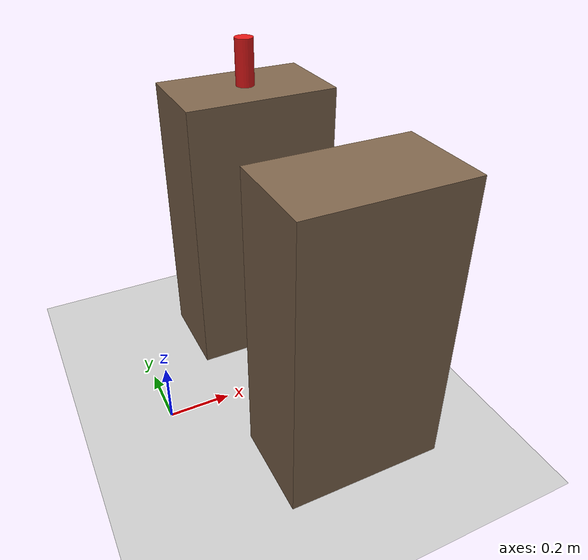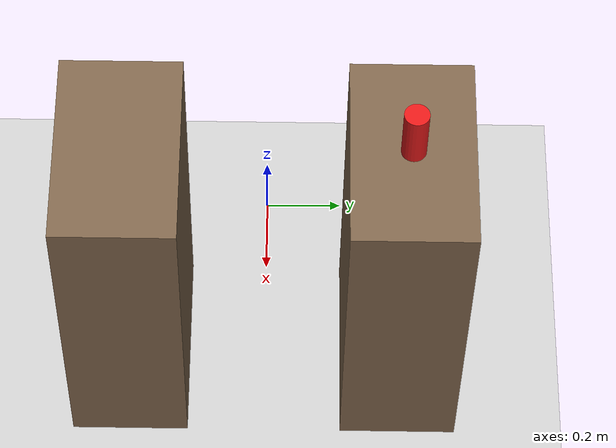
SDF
<?xml version="1.0" ?>
<sdf version="1.10">
  <world name="whole_arm_manipulation_workspace">

    <physics name='5ms' type='ode'>
      <max_step_size>0.005</max_step_size>
      <real_time_factor>1</real_time_factor>
      <real_time_update_rate>1000</real_time_update_rate>
      <ode>
        <solver>
          <type>quick</type>
          <iters>50</iters>
          <sor>1.3</sor>
        </solver>
        <constraints>
          <cfm>0.0</cfm>
          <erp>0.2</erp>
          <contact_max_correcting_vel>100.0</contact_max_correcting_vel>
          <contact_surface_layer>0.001</contact_surface_layer>
        </constraints>
      </ode>
    </physics>
    <!-- Gazebo Harmonic System Plugins -->
    <plugin name='gz::sim::systems::Physics' filename='gz-sim-physics-system' />
    <plugin name='gz::sim::systems::UserCommands' filename='gz-sim-user-commands-system' />
    <plugin name='gz::sim::systems::SceneBroadcaster' filename='gz-sim-scene-broadcaster-system' />

    <gravity>0 0 -9.8000000000000007</gravity>
    <magnetic_field>5.5644999999999998e-06 2.2875799999999999e-05 -4.2388400000000002e-05</magnetic_field>
    <atmosphere type='adiabatic' />

    <scene>
      <ambient>0.400000006 0.400000006 0.400000006 1</ambient>
      <background>0.699999988 0.699999988 0.699999988 1</background>
      <shadows>true</shadows>
    </scene>

    <light name='sun' type='directional'>
      <pose>0 0 10 0 0 0</pose>
      <cast_shadows>true</cast_shadows>
      <intensity>1</intensity>
      <direction>-0.5 0.10000000000000001 -0.90000000000000002</direction>
      <diffuse>0.800000012 0.800000012 0.800000012 1</diffuse>
      <specular>0.200000003 0.200000003 0.200000003 1</specular>
      <attenuation>
        <range>1000</range>
        <linear>0.01</linear>
        <constant>0.90000000000000002</constant>
        <quadratic>0.001</quadratic>
      </attenuation>
      <spot>
        <inner_angle>0</inner_angle>
        <outer_angle>0</outer_angle>
        <falloff>0</falloff>
      </spot>
    </light>

    <model name='ground_plane'>
      <static>true</static>
      <link name='link'>
        <collision name='collision'>
          <geometry>
            <plane>
              <normal>0 0 1</normal>
              <size>100 100</size>
            </plane>
          </geometry>
          <surface>
            <friction>
              <ode>
                <mu>1.0</mu>
                <mu2>1.0</mu2>
              </ode>
            </friction>
            <contact>
              <ode>
                <kp>1e7</kp>
                <kd>1.0</kd>
                <max_vel>0.01</max_vel>
                <min_depth>0.001</min_depth>
              </ode>
            </contact>
            <bounce>
              <restitution_coefficient>0</restitution_coefficient>
              <threshold>1e6</threshold>
            </bounce>
          </surface>
        </collision>
        <visual name='visual'>
          <geometry>
            <plane>
              <normal>0 0 1</normal>
              <size>100 100</size>
            </plane>
          </geometry>
          <material>
            <ambient>0.800000012 0.800000012 0.800000012 1</ambient>
            <diffuse>0.800000012 0.800000012 0.800000012 1</diffuse>
            <specular>0.800000012 0.800000012 0.800000012 1</specular>
          </material>
        </visual>
        <pose>0 0 0 0 0 0</pose>
        <inertial>
          <pose>0 0 0 0 0 0</pose>
          <mass>1</mass>
          <inertia>
            <ixx>1</ixx>
            <ixy>0</ixy>
            <ixz>0</ixz>
            <iyy>1</iyy>
            <iyz>0</iyz>
            <izz>1</izz>
          </inertia>
        </inertial>
        <enable_wind>false</enable_wind>
      </link>
      <pose>0 0 0 0 0 0</pose>
      <self_collide>false</self_collide>
    </model>

    <model name="test_table">
      <pose>0.45 0.35 0.475 0 0 0</pose>
      <static>true</static>
      <link name="link">
        <collision name="collision">
          <geometry>
            <box>
              <size>0.5 0.3 0.95</size>
            </box>
          </geometry>
          <surface>
            <friction>
              <ode>
                <mu>0.8</mu>
                <mu2>0.8</mu2>
              </ode>
            </friction>
            <contact>
              <ode>
                <kp>1e7</kp>
                <kd>1.0</kd>
                <max_vel>0.01</max_vel>
                <min_depth>0.001</min_depth>
              </ode>
            </contact>
            <bounce>
              <restitution_coefficient>0</restitution_coefficient>
              <threshold>1e6</threshold>
            </bounce>
          </surface>
        </collision>
        <visual name="visual">
          <geometry>
            <box>
              <size>0.5 0.3 0.95</size>
            </box>
          </geometry>
          <material>
            <ambient>0.5 0.4 0.3 1</ambient>
            <diffuse>0.5 0.4 0.3 1</diffuse>
          </material>
        </visual>
        <inertial>
          <pose>0 0 0 0 0 0</pose>
          <mass>8</mass>
          <inertia>
            <ixx>3.958</ixx>
            <iyy>4.479</iyy>
            <izz>0.625</izz>
            <ixy>0</ixy>
            <ixz>0</ixz>
            <iyz>0</iyz>
          </inertia>
        </inertial>
      </link>
    </model>

    <model name="lever">
      <pose>0.45 0.35 1.025 0 0 0</pose>
      <link name="lever_arm">
        <collision name="collision">
          <geometry>
            <cylinder>
              <radius>0.03035</radius>
              <length>0.15</length>
            </cylinder>
          </geometry>
          <surface>
            <friction>
              <ode>
                <mu>1.0</mu>
                <mu2>1.0</mu2>
              </ode>
            </friction>
            <contact>
              <ode>
                <kp>1e6</kp>
                <kd>1.0</kd>
              </ode>
            </contact>
          </surface>
        </collision>
        <visual name="visual">
          <geometry>
            <cylinder>
              <radius>0.03035</radius>
              <length>0.15</length>
            </cylinder>
          </geometry>
          <material>
            <ambient>0.9 0.1 0.1 1</ambient>
            <diffuse>0.9 0.1 0.1 1</diffuse>
          </material>
        </visual>
        <inertial>
          <pose>0 0 0 0 0 0</pose>
          <mass>0.2</mass>
          <inertia>
            <ixx>0.000375</ixx>
            <iyy>0.000375</iyy>
            <izz>0.0001024</izz>
            <ixy>0</ixy>
            <ixz>0</ixz>
            <iyz>0</iyz>
          </inertia>
        </inertial>
      </link>
    </model>

    <model name="destination_table">
      <pose>0.45 -0.35 0.475 0 0 0</pose>
      <static>true</static>
      <link name="link">
        <collision name="collision">
          <geometry>
            <box>
              <size>0.5 0.3 0.95</size>
            </box>
          </geometry>
          <surface>
            <friction>
              <ode>
                <mu>0.8</mu>
                <mu2>0.8</mu2>
              </ode>
            </friction>
            <contact>
              <ode>
                <kp>1e7</kp>
                <kd>1.0</kd>
                <max_vel>0.01</max_vel>
                <min_depth>0.001</min_depth>
              </ode>
            </contact>
            <bounce>
              <restitution_coefficient>0</restitution_coefficient>
              <threshold>1e6</threshold>
            </bounce>
          </surface>
        </collision>
        <visual name="visual">
          <geometry>
            <box>
              <size>0.5 0.3 0.95</size>
            </box>
          </geometry>
          <material>
            <ambient>0.5 0.4 0.3 1</ambient>
            <diffuse>0.5 0.4 0.3 1</diffuse>
          </material>
        </visual>
        <inertial>
          <pose>0 0 0 0 0 0</pose>
          <mass>8</mass>
          <inertia>
            <ixx>3.958</ixx>
            <iyy>4.479</iyy>
            <izz>0.625</izz>
            <ixy>0</ixy>
            <ixz>0</ixz>
            <iyz>0</iyz>
          </inertia>
        </inertial>
      </link>
    </model>
  </world>
</sdf>
